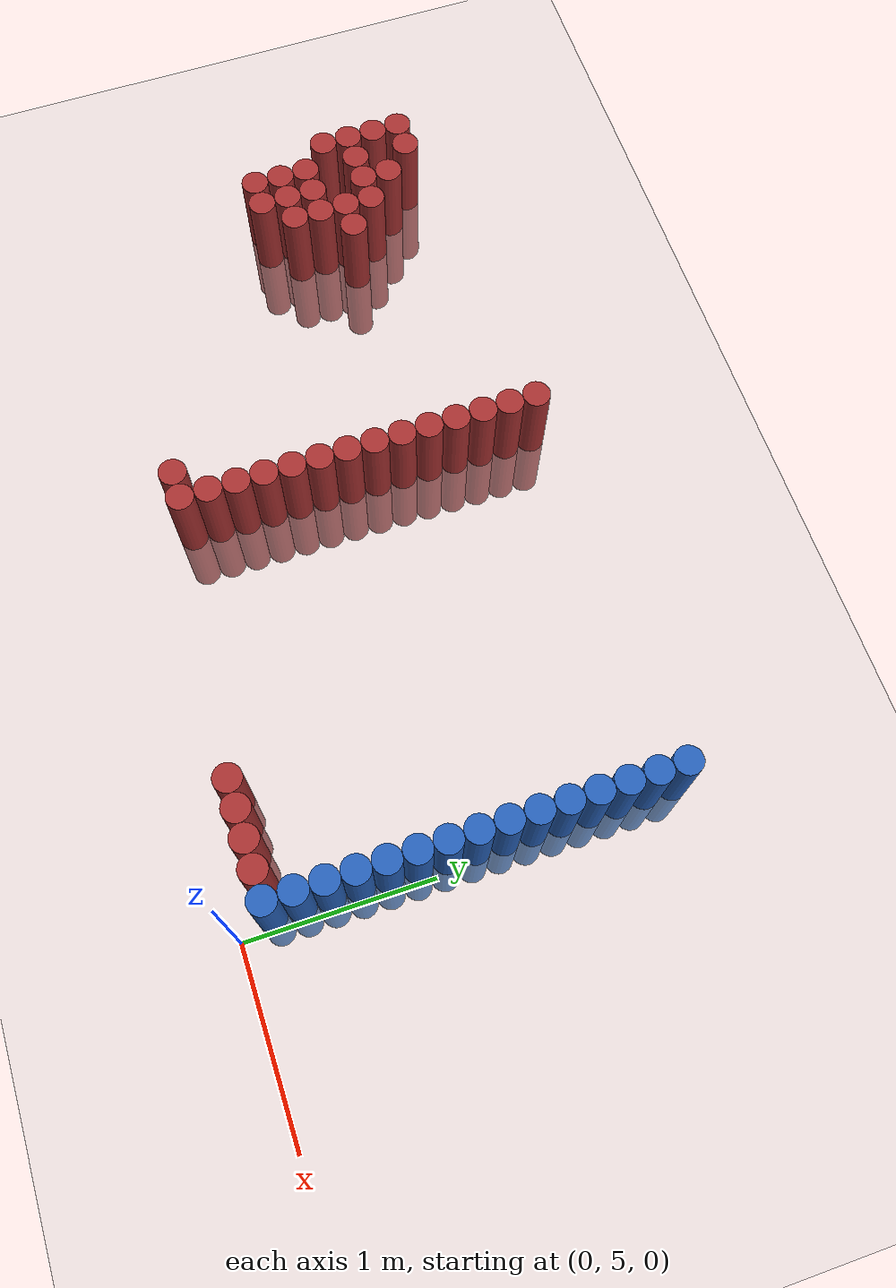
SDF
<sdf version="1.6">
 <world name="default">
  <model name="ground_plane">
   <static>1</static>
   <link name="link">
    <collision name="collision">
     <geometry><plane><normal>0 0 1</normal><size>100 100</size></plane></geometry>
     <surface><friction><ode><mu>100</mu><mu2>50</mu2></ode></friction></surface>
    </collision>
    <visual name="visual">
     <cast_shadows>0</cast_shadows>
     <geometry><plane><normal>0 0 1</normal><size>100 100</size></plane></geometry>
     <material>
      <script><uri>file://media/materials/scripts/gazebo.material</uri><name>Gazebo/Grey</name></script>
     </material>
    </visual>
   </link>
  </model>
  <model name="unit_cylinder_255">
   <static>1</static>
   <pose>-4.125000 6.675000 0.000000 0.000000 0.000000 0.000000</pose>
   <link name="link">
    <inertial>
     <mass>1</mass>
     <inertia><ixx>0.145833</ixx><ixy>0</ixy><ixz>0</ixz><iyy>0.145833</iyy><iyz>0</iyz><izz>0.125</izz></inertia>
    </inertial>
    <collision name="collision">
     <geometry><cylinder><radius>0.075000</radius><length>1</length></cylinder></geometry>
    </collision>
    <visual name="visual">
     <geometry><cylinder><radius>0.075000</radius><length>1</length></cylinder></geometry>
     <material>
      <ambient>0.648000 0.192000 0.192000 1</ambient>
      <diffuse>0.648000 0.192000 0.192000 1</diffuse>
     </material>
     <material>
      <script><name>Gazebo/Grey</name><uri>file://media/materials/scripts/gazebo.material</uri></script>
     </material>
    </visual>
   </link>
  </model>
  <model name="unit_cylinder_256">
   <static>1</static>
   <pose>-4.125000 6.825000 0.000000 0.000000 0.000000 0.000000</pose>
   <link name="link">
    <inertial>
     <mass>1</mass>
     <inertia><ixx>0.145833</ixx><ixy>0</ixy><ixz>0</ixz><iyy>0.145833</iyy><iyz>0</iyz><izz>0.125</izz></inertia>
    </inertial>
    <collision name="collision">
     <geometry><cylinder><radius>0.075000</radius><length>1</length></cylinder></geometry>
    </collision>
    <visual name="visual">
     <geometry><cylinder><radius>0.075000</radius><length>1</length></cylinder></geometry>
     <material>
      <ambient>0.648000 0.192000 0.192000 1</ambient>
      <diffuse>0.648000 0.192000 0.192000 1</diffuse>
     </material>
     <material>
      <script><name>Gazebo/Grey</name><uri>file://media/materials/scripts/gazebo.material</uri></script>
     </material>
    </visual>
   </link>
  </model>
  <model name="unit_cylinder_257">
   <static>1</static>
   <pose>-4.125000 6.975000 0.000000 0.000000 0.000000 0.000000</pose>
   <link name="link">
    <inertial>
     <mass>1</mass>
     <inertia><ixx>0.145833</ixx><ixy>0</ixy><ixz>0</ixz><iyy>0.145833</iyy><iyz>0</iyz><izz>0.125</izz></inertia>
    </inertial>
    <collision name="collision">
     <geometry><cylinder><radius>0.075000</radius><length>1</length></cylinder></geometry>
    </collision>
    <visual name="visual">
     <geometry><cylinder><radius>0.075000</radius><length>1</length></cylinder></geometry>
     <material>
      <ambient>0.648000 0.192000 0.192000 1</ambient>
      <diffuse>0.648000 0.192000 0.192000 1</diffuse>
     </material>
     <material>
      <script><name>Gazebo/Grey</name><uri>file://media/materials/scripts/gazebo.material</uri></script>
     </material>
    </visual>
   </link>
  </model>
  <model name="unit_cylinder_258">
   <static>1</static>
   <pose>-4.125000 7.125000 0.000000 0.000000 0.000000 0.000000</pose>
   <link name="link">
    <inertial>
     <mass>1</mass>
     <inertia><ixx>0.145833</ixx><ixy>0</ixy><ixz>0</ixz><iyy>0.145833</iyy><iyz>0</iyz><izz>0.125</izz></inertia>
    </inertial>
    <collision name="collision">
     <geometry><cylinder><radius>0.075000</radius><length>1</length></cylinder></geometry>
    </collision>
    <visual name="visual">
     <geometry><cylinder><radius>0.075000</radius><length>1</length></cylinder></geometry>
     <material>
      <ambient>0.648000 0.192000 0.192000 1</ambient>
      <diffuse>0.648000 0.192000 0.192000 1</diffuse>
     </material>
     <material>
      <script><name>Gazebo/Grey</name><uri>file://media/materials/scripts/gazebo.material</uri></script>
     </material>
    </visual>
   </link>
  </model>
  <model name="unit_cylinder_262">
   <static>1</static>
   <pose>-3.975000 6.225000 0.000000 0.000000 0.000000 0.000000</pose>
   <link name="link">
    <inertial>
     <mass>1</mass>
     <inertia><ixx>0.145833</ixx><ixy>0</ixy><ixz>0</ixz><iyy>0.145833</iyy><iyz>0</iyz><izz>0.125</izz></inertia>
    </inertial>
    <collision name="collision">
     <geometry><cylinder><radius>0.075000</radius><length>1</length></cylinder></geometry>
    </collision>
    <visual name="visual">
     <geometry><cylinder><radius>0.075000</radius><length>1</length></cylinder></geometry>
     <material>
      <ambient>0.648000 0.192000 0.192000 1</ambient>
      <diffuse>0.648000 0.192000 0.192000 1</diffuse>
     </material>
     <material>
      <script><name>Gazebo/Grey</name><uri>file://media/materials/scripts/gazebo.material</uri></script>
     </material>
    </visual>
   </link>
  </model>
  <model name="unit_cylinder_263">
   <static>1</static>
   <pose>-3.975000 6.375000 0.000000 0.000000 0.000000 0.000000</pose>
   <link name="link">
    <inertial>
     <mass>1</mass>
     <inertia><ixx>0.145833</ixx><ixy>0</ixy><ixz>0</ixz><iyy>0.145833</iyy><iyz>0</iyz><izz>0.125</izz></inertia>
    </inertial>
    <collision name="collision">
     <geometry><cylinder><radius>0.075000</radius><length>1</length></cylinder></geometry>
    </collision>
    <visual name="visual">
     <geometry><cylinder><radius>0.075000</radius><length>1</length></cylinder></geometry>
     <material>
      <ambient>0.648000 0.192000 0.192000 1</ambient>
      <diffuse>0.648000 0.192000 0.192000 1</diffuse>
     </material>
     <material>
      <script><name>Gazebo/Grey</name><uri>file://media/materials/scripts/gazebo.material</uri></script>
     </material>
    </visual>
   </link>
  </model>
  <model name="unit_cylinder_264">
   <static>1</static>
   <pose>-3.975000 6.525000 0.000000 0.000000 0.000000 0.000000</pose>
   <link name="link">
    <inertial>
     <mass>1</mass>
     <inertia><ixx>0.145833</ixx><ixy>0</ixy><ixz>0</ixz><iyy>0.145833</iyy><iyz>0</iyz><izz>0.125</izz></inertia>
    </inertial>
    <collision name="collision">
     <geometry><cylinder><radius>0.075000</radius><length>1</length></cylinder></geometry>
    </collision>
    <visual name="visual">
     <geometry><cylinder><radius>0.075000</radius><length>1</length></cylinder></geometry>
     <material>
      <ambient>0.648000 0.192000 0.192000 1</ambient>
      <diffuse>0.648000 0.192000 0.192000 1</diffuse>
     </material>
     <material>
      <script><name>Gazebo/Grey</name><uri>file://media/materials/scripts/gazebo.material</uri></script>
     </material>
    </visual>
   </link>
  </model>
  <model name="unit_cylinder_265">
   <static>1</static>
   <pose>-3.975000 6.825000 0.000000 0.000000 0.000000 0.000000</pose>
   <link name="link">
    <inertial>
     <mass>1</mass>
     <inertia><ixx>0.145833</ixx><ixy>0</ixy><ixz>0</ixz><iyy>0.145833</iyy><iyz>0</iyz><izz>0.125</izz></inertia>
    </inertial>
    <collision name="collision">
     <geometry><cylinder><radius>0.075000</radius><length>1</length></cylinder></geometry>
    </collision>
    <visual name="visual">
     <geometry><cylinder><radius>0.075000</radius><length>1</length></cylinder></geometry>
     <material>
      <ambient>0.648000 0.192000 0.192000 1</ambient>
      <diffuse>0.648000 0.192000 0.192000 1</diffuse>
     </material>
     <material>
      <script><name>Gazebo/Grey</name><uri>file://media/materials/scripts/gazebo.material</uri></script>
     </material>
    </visual>
   </link>
  </model>
  <model name="unit_cylinder_266">
   <static>1</static>
   <pose>-3.975000 7.125000 0.000000 0.000000 0.000000 0.000000</pose>
   <link name="link">
    <inertial>
     <mass>1</mass>
     <inertia><ixx>0.145833</ixx><ixy>0</ixy><ixz>0</ixz><iyy>0.145833</iyy><iyz>0</iyz><izz>0.125</izz></inertia>
    </inertial>
    <collision name="collision">
     <geometry><cylinder><radius>0.075000</radius><length>1</length></cylinder></geometry>
    </collision>
    <visual name="visual">
     <geometry><cylinder><radius>0.075000</radius><length>1</length></cylinder></geometry>
     <material>
      <ambient>0.648000 0.192000 0.192000 1</ambient>
      <diffuse>0.648000 0.192000 0.192000 1</diffuse>
     </material>
     <material>
      <script><name>Gazebo/Grey</name><uri>file://media/materials/scripts/gazebo.material</uri></script>
     </material>
    </visual>
   </link>
  </model>
  <model name="unit_cylinder_268">
   <static>1</static>
   <pose>-3.825000 6.225000 0.000000 0.000000 0.000000 0.000000</pose>
   <link name="link">
    <inertial>
     <mass>1</mass>
     <inertia><ixx>0.145833</ixx><ixy>0</ixy><ixz>0</ixz><iyy>0.145833</iyy><iyz>0</iyz><izz>0.125</izz></inertia>
    </inertial>
    <collision name="collision">
     <geometry><cylinder><radius>0.075000</radius><length>1</length></cylinder></geometry>
    </collision>
    <visual name="visual">
     <geometry><cylinder><radius>0.075000</radius><length>1</length></cylinder></geometry>
     <material>
      <ambient>0.648000 0.192000 0.192000 1</ambient>
      <diffuse>0.648000 0.192000 0.192000 1</diffuse>
     </material>
     <material>
      <script><name>Gazebo/Grey</name><uri>file://media/materials/scripts/gazebo.material</uri></script>
     </material>
    </visual>
   </link>
  </model>
  <model name="unit_cylinder_269">
   <static>1</static>
   <pose>-3.825000 6.375000 0.000000 0.000000 0.000000 0.000000</pose>
   <link name="link">
    <inertial>
     <mass>1</mass>
     <inertia><ixx>0.145833</ixx><ixy>0</ixy><ixz>0</ixz><iyy>0.145833</iyy><iyz>0</iyz><izz>0.125</izz></inertia>
    </inertial>
    <collision name="collision">
     <geometry><cylinder><radius>0.075000</radius><length>1</length></cylinder></geometry>
    </collision>
    <visual name="visual">
     <geometry><cylinder><radius>0.075000</radius><length>1</length></cylinder></geometry>
     <material>
      <ambient>0.648000 0.192000 0.192000 1</ambient>
      <diffuse>0.648000 0.192000 0.192000 1</diffuse>
     </material>
     <material>
      <script><name>Gazebo/Grey</name><uri>file://media/materials/scripts/gazebo.material</uri></script>
     </material>
    </visual>
   </link>
  </model>
  <model name="unit_cylinder_270">
   <static>1</static>
   <pose>-3.825000 6.525000 0.000000 0.000000 0.000000 0.000000</pose>
   <link name="link">
    <inertial>
     <mass>1</mass>
     <inertia><ixx>0.145833</ixx><ixy>0</ixy><ixz>0</ixz><iyy>0.145833</iyy><iyz>0</iyz><izz>0.125</izz></inertia>
    </inertial>
    <collision name="collision">
     <geometry><cylinder><radius>0.075000</radius><length>1</length></cylinder></geometry>
    </collision>
    <visual name="visual">
     <geometry><cylinder><radius>0.075000</radius><length>1</length></cylinder></geometry>
     <material>
      <ambient>0.648000 0.192000 0.192000 1</ambient>
      <diffuse>0.648000 0.192000 0.192000 1</diffuse>
     </material>
     <material>
      <script><name>Gazebo/Grey</name><uri>file://media/materials/scripts/gazebo.material</uri></script>
     </material>
    </visual>
   </link>
  </model>
  <model name="unit_cylinder_271">
   <static>1</static>
   <pose>-3.825000 6.825000 0.000000 0.000000 0.000000 0.000000</pose>
   <link name="link">
    <inertial>
     <mass>1</mass>
     <inertia><ixx>0.145833</ixx><ixy>0</ixy><ixz>0</ixz><iyy>0.145833</iyy><iyz>0</iyz><izz>0.125</izz></inertia>
    </inertial>
    <collision name="collision">
     <geometry><cylinder><radius>0.075000</radius><length>1</length></cylinder></geometry>
    </collision>
    <visual name="visual">
     <geometry><cylinder><radius>0.075000</radius><length>1</length></cylinder></geometry>
     <material>
      <ambient>0.648000 0.192000 0.192000 1</ambient>
      <diffuse>0.648000 0.192000 0.192000 1</diffuse>
     </material>
     <material>
      <script><name>Gazebo/Grey</name><uri>file://media/materials/scripts/gazebo.material</uri></script>
     </material>
    </visual>
   </link>
  </model>
  <model name="unit_cylinder_272">
   <static>1</static>
   <pose>-3.825000 6.975000 0.000000 0.000000 0.000000 0.000000</pose>
   <link name="link">
    <inertial>
     <mass>1</mass>
     <inertia><ixx>0.145833</ixx><ixy>0</ixy><ixz>0</ixz><iyy>0.145833</iyy><iyz>0</iyz><izz>0.125</izz></inertia>
    </inertial>
    <collision name="collision">
     <geometry><cylinder><radius>0.075000</radius><length>1</length></cylinder></geometry>
    </collision>
    <visual name="visual">
     <geometry><cylinder><radius>0.075000</radius><length>1</length></cylinder></geometry>
     <material>
      <ambient>0.648000 0.192000 0.192000 1</ambient>
      <diffuse>0.648000 0.192000 0.192000 1</diffuse>
     </material>
     <material>
      <script><name>Gazebo/Grey</name><uri>file://media/materials/scripts/gazebo.material</uri></script>
     </material>
    </visual>
   </link>
  </model>
  <model name="unit_cylinder_273">
   <static>1</static>
   <pose>-3.675000 6.375000 0.000000 0.000000 0.000000 0.000000</pose>
   <link name="link">
    <inertial>
     <mass>1</mass>
     <inertia><ixx>0.145833</ixx><ixy>0</ixy><ixz>0</ixz><iyy>0.145833</iyy><iyz>0</iyz><izz>0.125</izz></inertia>
    </inertial>
    <collision name="collision">
     <geometry><cylinder><radius>0.075000</radius><length>1</length></cylinder></geometry>
    </collision>
    <visual name="visual">
     <geometry><cylinder><radius>0.075000</radius><length>1</length></cylinder></geometry>
     <material>
      <ambient>0.648000 0.192000 0.192000 1</ambient>
      <diffuse>0.648000 0.192000 0.192000 1</diffuse>
     </material>
     <material>
      <script><name>Gazebo/Grey</name><uri>file://media/materials/scripts/gazebo.material</uri></script>
     </material>
    </visual>
   </link>
  </model>
  <model name="unit_cylinder_274">
   <static>1</static>
   <pose>-3.675000 6.525000 0.000000 0.000000 0.000000 0.000000</pose>
   <link name="link">
    <inertial>
     <mass>1</mass>
     <inertia><ixx>0.145833</ixx><ixy>0</ixy><ixz>0</ixz><iyy>0.145833</iyy><iyz>0</iyz><izz>0.125</izz></inertia>
    </inertial>
    <collision name="collision">
     <geometry><cylinder><radius>0.075000</radius><length>1</length></cylinder></geometry>
    </collision>
    <visual name="visual">
     <geometry><cylinder><radius>0.075000</radius><length>1</length></cylinder></geometry>
     <material>
      <ambient>0.648000 0.192000 0.192000 1</ambient>
      <diffuse>0.648000 0.192000 0.192000 1</diffuse>
     </material>
     <material>
      <script><name>Gazebo/Grey</name><uri>file://media/materials/scripts/gazebo.material</uri></script>
     </material>
    </visual>
   </link>
  </model>
  <model name="unit_cylinder_275">
   <static>1</static>
   <pose>-3.675000 6.675000 0.000000 0.000000 0.000000 0.000000</pose>
   <link name="link">
    <inertial>
     <mass>1</mass>
     <inertia><ixx>0.145833</ixx><ixy>0</ixy><ixz>0</ixz><iyy>0.145833</iyy><iyz>0</iyz><izz>0.125</izz></inertia>
    </inertial>
    <collision name="collision">
     <geometry><cylinder><radius>0.075000</radius><length>1</length></cylinder></geometry>
    </collision>
    <visual name="visual">
     <geometry><cylinder><radius>0.075000</radius><length>1</length></cylinder></geometry>
     <material>
      <ambient>0.648000 0.192000 0.192000 1</ambient>
      <diffuse>0.648000 0.192000 0.192000 1</diffuse>
     </material>
     <material>
      <script><name>Gazebo/Grey</name><uri>file://media/materials/scripts/gazebo.material</uri></script>
     </material>
    </visual>
   </link>
  </model>
  <model name="unit_cylinder_276">
   <static>1</static>
   <pose>-3.675000 6.825000 0.000000 0.000000 0.000000 0.000000</pose>
   <link name="link">
    <inertial>
     <mass>1</mass>
     <inertia><ixx>0.145833</ixx><ixy>0</ixy><ixz>0</ixz><iyy>0.145833</iyy><iyz>0</iyz><izz>0.125</izz></inertia>
    </inertial>
    <collision name="collision">
     <geometry><cylinder><radius>0.075000</radius><length>1</length></cylinder></geometry>
    </collision>
    <visual name="visual">
     <geometry><cylinder><radius>0.075000</radius><length>1</length></cylinder></geometry>
     <material>
      <ambient>0.648000 0.192000 0.192000 1</ambient>
      <diffuse>0.648000 0.192000 0.192000 1</diffuse>
     </material>
     <material>
      <script><name>Gazebo/Grey</name><uri>file://media/materials/scripts/gazebo.material</uri></script>
     </material>
    </visual>
   </link>
  </model>
  <model name="unit_cylinder_277">
   <static>1</static>
   <pose>-3.525000 6.675000 0.000000 0.000000 0.000000 0.000000</pose>
   <link name="link">
    <inertial>
     <mass>1</mass>
     <inertia><ixx>0.145833</ixx><ixy>0</ixy><ixz>0</ixz><iyy>0.145833</iyy><iyz>0</iyz><izz>0.125</izz></inertia>
    </inertial>
    <collision name="collision">
     <geometry><cylinder><radius>0.075000</radius><length>1</length></cylinder></geometry>
    </collision>
    <visual name="visual">
     <geometry><cylinder><radius>0.075000</radius><length>1</length></cylinder></geometry>
     <material>
      <ambient>0.648000 0.192000 0.192000 1</ambient>
      <diffuse>0.648000 0.192000 0.192000 1</diffuse>
     </material>
     <material>
      <script><name>Gazebo/Grey</name><uri>file://media/materials/scripts/gazebo.material</uri></script>
     </material>
    </visual>
   </link>
  </model>
  <model name="unit_cylinder_292">
   <static>1</static>
   <pose>-2.325000 5.325000 0.000000 0.000000 0.000000 0.000000</pose>
   <link name="link">
    <inertial>
     <mass>1</mass>
     <inertia><ixx>0.145833</ixx><ixy>0</ixy><ixz>0</ixz><iyy>0.145833</iyy><iyz>0</iyz><izz>0.125</izz></inertia>
    </inertial>
    <collision name="collision">
     <geometry><cylinder><radius>0.075000</radius><length>1</length></cylinder></geometry>
    </collision>
    <visual name="visual">
     <geometry><cylinder><radius>0.075000</radius><length>1</length></cylinder></geometry>
     <material>
      <ambient>0.648000 0.192000 0.192000 1</ambient>
      <diffuse>0.648000 0.192000 0.192000 1</diffuse>
     </material>
     <material>
      <script><name>Gazebo/Grey</name><uri>file://media/materials/scripts/gazebo.material</uri></script>
     </material>
    </visual>
   </link>
  </model>
  <model name="unit_cylinder_297">
   <static>1</static>
   <pose>-2.175000 5.325000 0.000000 0.000000 0.000000 0.000000</pose>
   <link name="link">
    <inertial>
     <mass>1</mass>
     <inertia><ixx>0.145833</ixx><ixy>0</ixy><ixz>0</ixz><iyy>0.145833</iyy><iyz>0</iyz><izz>0.125</izz></inertia>
    </inertial>
    <collision name="collision">
     <geometry><cylinder><radius>0.075000</radius><length>1</length></cylinder></geometry>
    </collision>
    <visual name="visual">
     <geometry><cylinder><radius>0.075000</radius><length>1</length></cylinder></geometry>
     <material>
      <ambient>0.648000 0.192000 0.192000 1</ambient>
      <diffuse>0.648000 0.192000 0.192000 1</diffuse>
     </material>
     <material>
      <script><name>Gazebo/Grey</name><uri>file://media/materials/scripts/gazebo.material</uri></script>
     </material>
    </visual>
   </link>
  </model>
  <model name="unit_cylinder_298">
   <static>1</static>
   <pose>-2.175000 5.475000 0.000000 0.000000 0.000000 0.000000</pose>
   <link name="link">
    <inertial>
     <mass>1</mass>
     <inertia><ixx>0.145833</ixx><ixy>0</ixy><ixz>0</ixz><iyy>0.145833</iyy><iyz>0</iyz><izz>0.125</izz></inertia>
    </inertial>
    <collision name="collision">
     <geometry><cylinder><radius>0.075000</radius><length>1</length></cylinder></geometry>
    </collision>
    <visual name="visual">
     <geometry><cylinder><radius>0.075000</radius><length>1</length></cylinder></geometry>
     <material>
      <ambient>0.648000 0.192000 0.192000 1</ambient>
      <diffuse>0.648000 0.192000 0.192000 1</diffuse>
     </material>
     <material>
      <script><name>Gazebo/Grey</name><uri>file://media/materials/scripts/gazebo.material</uri></script>
     </material>
    </visual>
   </link>
  </model>
  <model name="unit_cylinder_299">
   <static>1</static>
   <pose>-2.175000 5.625000 0.000000 0.000000 0.000000 0.000000</pose>
   <link name="link">
    <inertial>
     <mass>1</mass>
     <inertia><ixx>0.145833</ixx><ixy>0</ixy><ixz>0</ixz><iyy>0.145833</iyy><iyz>0</iyz><izz>0.125</izz></inertia>
    </inertial>
    <collision name="collision">
     <geometry><cylinder><radius>0.075000</radius><length>1</length></cylinder></geometry>
    </collision>
    <visual name="visual">
     <geometry><cylinder><radius>0.075000</radius><length>1</length></cylinder></geometry>
     <material>
      <ambient>0.648000 0.192000 0.192000 1</ambient>
      <diffuse>0.648000 0.192000 0.192000 1</diffuse>
     </material>
     <material>
      <script><name>Gazebo/Grey</name><uri>file://media/materials/scripts/gazebo.material</uri></script>
     </material>
    </visual>
   </link>
  </model>
  <model name="unit_cylinder_300">
   <static>1</static>
   <pose>-2.175000 5.775000 0.000000 0.000000 0.000000 0.000000</pose>
   <link name="link">
    <inertial>
     <mass>1</mass>
     <inertia><ixx>0.145833</ixx><ixy>0</ixy><ixz>0</ixz><iyy>0.145833</iyy><iyz>0</iyz><izz>0.125</izz></inertia>
    </inertial>
    <collision name="collision">
     <geometry><cylinder><radius>0.075000</radius><length>1</length></cylinder></geometry>
    </collision>
    <visual name="visual">
     <geometry><cylinder><radius>0.075000</radius><length>1</length></cylinder></geometry>
     <material>
      <ambient>0.648000 0.192000 0.192000 1</ambient>
      <diffuse>0.648000 0.192000 0.192000 1</diffuse>
     </material>
     <material>
      <script><name>Gazebo/Grey</name><uri>file://media/materials/scripts/gazebo.material</uri></script>
     </material>
    </visual>
   </link>
  </model>
  <model name="unit_cylinder_301">
   <static>1</static>
   <pose>-2.175000 5.925000 0.000000 0.000000 0.000000 0.000000</pose>
   <link name="link">
    <inertial>
     <mass>1</mass>
     <inertia><ixx>0.145833</ixx><ixy>0</ixy><ixz>0</ixz><iyy>0.145833</iyy><iyz>0</iyz><izz>0.125</izz></inertia>
    </inertial>
    <collision name="collision">
     <geometry><cylinder><radius>0.075000</radius><length>1</length></cylinder></geometry>
    </collision>
    <visual name="visual">
     <geometry><cylinder><radius>0.075000</radius><length>1</length></cylinder></geometry>
     <material>
      <ambient>0.648000 0.192000 0.192000 1</ambient>
      <diffuse>0.648000 0.192000 0.192000 1</diffuse>
     </material>
     <material>
      <script><name>Gazebo/Grey</name><uri>file://media/materials/scripts/gazebo.material</uri></script>
     </material>
    </visual>
   </link>
  </model>
  <model name="unit_cylinder_302">
   <static>1</static>
   <pose>-2.175000 6.075000 0.000000 0.000000 0.000000 0.000000</pose>
   <link name="link">
    <inertial>
     <mass>1</mass>
     <inertia><ixx>0.145833</ixx><ixy>0</ixy><ixz>0</ixz><iyy>0.145833</iyy><iyz>0</iyz><izz>0.125</izz></inertia>
    </inertial>
    <collision name="collision">
     <geometry><cylinder><radius>0.075000</radius><length>1</length></cylinder></geometry>
    </collision>
    <visual name="visual">
     <geometry><cylinder><radius>0.075000</radius><length>1</length></cylinder></geometry>
     <material>
      <ambient>0.648000 0.192000 0.192000 1</ambient>
      <diffuse>0.648000 0.192000 0.192000 1</diffuse>
     </material>
     <material>
      <script><name>Gazebo/Grey</name><uri>file://media/materials/scripts/gazebo.material</uri></script>
     </material>
    </visual>
   </link>
  </model>
  <model name="unit_cylinder_303">
   <static>1</static>
   <pose>-2.175000 6.225000 0.000000 0.000000 0.000000 0.000000</pose>
   <link name="link">
    <inertial>
     <mass>1</mass>
     <inertia><ixx>0.145833</ixx><ixy>0</ixy><ixz>0</ixz><iyy>0.145833</iyy><iyz>0</iyz><izz>0.125</izz></inertia>
    </inertial>
    <collision name="collision">
     <geometry><cylinder><radius>0.075000</radius><length>1</length></cylinder></geometry>
    </collision>
    <visual name="visual">
     <geometry><cylinder><radius>0.075000</radius><length>1</length></cylinder></geometry>
     <material>
      <ambient>0.648000 0.192000 0.192000 1</ambient>
      <diffuse>0.648000 0.192000 0.192000 1</diffuse>
     </material>
     <material>
      <script><name>Gazebo/Grey</name><uri>file://media/materials/scripts/gazebo.material</uri></script>
     </material>
    </visual>
   </link>
  </model>
  <model name="unit_cylinder_304">
   <static>1</static>
   <pose>-2.175000 6.375000 0.000000 0.000000 0.000000 0.000000</pose>
   <link name="link">
    <inertial>
     <mass>1</mass>
     <inertia><ixx>0.145833</ixx><ixy>0</ixy><ixz>0</ixz><iyy>0.145833</iyy><iyz>0</iyz><izz>0.125</izz></inertia>
    </inertial>
    <collision name="collision">
     <geometry><cylinder><radius>0.075000</radius><length>1</length></cylinder></geometry>
    </collision>
    <visual name="visual">
     <geometry><cylinder><radius>0.075000</radius><length>1</length></cylinder></geometry>
     <material>
      <ambient>0.648000 0.192000 0.192000 1</ambient>
      <diffuse>0.648000 0.192000 0.192000 1</diffuse>
     </material>
     <material>
      <script><name>Gazebo/Grey</name><uri>file://media/materials/scripts/gazebo.material</uri></script>
     </material>
    </visual>
   </link>
  </model>
  <model name="unit_cylinder_305">
   <static>1</static>
   <pose>-2.175000 6.525000 0.000000 0.000000 0.000000 0.000000</pose>
   <link name="link">
    <inertial>
     <mass>1</mass>
     <inertia><ixx>0.145833</ixx><ixy>0</ixy><ixz>0</ixz><iyy>0.145833</iyy><iyz>0</iyz><izz>0.125</izz></inertia>
    </inertial>
    <collision name="collision">
     <geometry><cylinder><radius>0.075000</radius><length>1</length></cylinder></geometry>
    </collision>
    <visual name="visual">
     <geometry><cylinder><radius>0.075000</radius><length>1</length></cylinder></geometry>
     <material>
      <ambient>0.648000 0.192000 0.192000 1</ambient>
      <diffuse>0.648000 0.192000 0.192000 1</diffuse>
     </material>
     <material>
      <script><name>Gazebo/Grey</name><uri>file://media/materials/scripts/gazebo.material</uri></script>
     </material>
    </visual>
   </link>
  </model>
  <model name="unit_cylinder_306">
   <static>1</static>
   <pose>-2.175000 6.675000 0.000000 0.000000 0.000000 0.000000</pose>
   <link name="link">
    <inertial>
     <mass>1</mass>
     <inertia><ixx>0.145833</ixx><ixy>0</ixy><ixz>0</ixz><iyy>0.145833</iyy><iyz>0</iyz><izz>0.125</izz></inertia>
    </inertial>
    <collision name="collision">
     <geometry><cylinder><radius>0.075000</radius><length>1</length></cylinder></geometry>
    </collision>
    <visual name="visual">
     <geometry><cylinder><radius>0.075000</radius><length>1</length></cylinder></geometry>
     <material>
      <ambient>0.648000 0.192000 0.192000 1</ambient>
      <diffuse>0.648000 0.192000 0.192000 1</diffuse>
     </material>
     <material>
      <script><name>Gazebo/Grey</name><uri>file://media/materials/scripts/gazebo.material</uri></script>
     </material>
    </visual>
   </link>
  </model>
  <model name="unit_cylinder_307">
   <static>1</static>
   <pose>-2.175000 6.825000 0.000000 0.000000 0.000000 0.000000</pose>
   <link name="link">
    <inertial>
     <mass>1</mass>
     <inertia><ixx>0.145833</ixx><ixy>0</ixy><ixz>0</ixz><iyy>0.145833</iyy><iyz>0</iyz><izz>0.125</izz></inertia>
    </inertial>
    <collision name="collision">
     <geometry><cylinder><radius>0.075000</radius><length>1</length></cylinder></geometry>
    </collision>
    <visual name="visual">
     <geometry><cylinder><radius>0.075000</radius><length>1</length></cylinder></geometry>
     <material>
      <ambient>0.648000 0.192000 0.192000 1</ambient>
      <diffuse>0.648000 0.192000 0.192000 1</diffuse>
     </material>
     <material>
      <script><name>Gazebo/Grey</name><uri>file://media/materials/scripts/gazebo.material</uri></script>
     </material>
    </visual>
   </link>
  </model>
  <model name="unit_cylinder_308">
   <static>1</static>
   <pose>-2.175000 6.975000 0.000000 0.000000 0.000000 0.000000</pose>
   <link name="link">
    <inertial>
     <mass>1</mass>
     <inertia><ixx>0.145833</ixx><ixy>0</ixy><ixz>0</ixz><iyy>0.145833</iyy><iyz>0</iyz><izz>0.125</izz></inertia>
    </inertial>
    <collision name="collision">
     <geometry><cylinder><radius>0.075000</radius><length>1</length></cylinder></geometry>
    </collision>
    <visual name="visual">
     <geometry><cylinder><radius>0.075000</radius><length>1</length></cylinder></geometry>
     <material>
      <ambient>0.648000 0.192000 0.192000 1</ambient>
      <diffuse>0.648000 0.192000 0.192000 1</diffuse>
     </material>
     <material>
      <script><name>Gazebo/Grey</name><uri>file://media/materials/scripts/gazebo.material</uri></script>
     </material>
    </visual>
   </link>
  </model>
  <model name="unit_cylinder_309">
   <static>1</static>
   <pose>-2.175000 7.125000 0.000000 0.000000 0.000000 0.000000</pose>
   <link name="link">
    <inertial>
     <mass>1</mass>
     <inertia><ixx>0.145833</ixx><ixy>0</ixy><ixz>0</ixz><iyy>0.145833</iyy><iyz>0</iyz><izz>0.125</izz></inertia>
    </inertial>
    <collision name="collision">
     <geometry><cylinder><radius>0.075000</radius><length>1</length></cylinder></geometry>
    </collision>
    <visual name="visual">
     <geometry><cylinder><radius>0.075000</radius><length>1</length></cylinder></geometry>
     <material>
      <ambient>0.648000 0.192000 0.192000 1</ambient>
      <diffuse>0.648000 0.192000 0.192000 1</diffuse>
     </material>
     <material>
      <script><name>Gazebo/Grey</name><uri>file://media/materials/scripts/gazebo.material</uri></script>
     </material>
    </visual>
   </link>
  </model>
  <model name="unit_cylinder_310">
   <static>1</static>
   <pose>-2.175000 7.275000 0.000000 0.000000 0.000000 0.000000</pose>
   <link name="link">
    <inertial>
     <mass>1</mass>
     <inertia><ixx>0.145833</ixx><ixy>0</ixy><ixz>0</ixz><iyy>0.145833</iyy><iyz>0</iyz><izz>0.125</izz></inertia>
    </inertial>
    <collision name="collision">
     <geometry><cylinder><radius>0.075000</radius><length>1</length></cylinder></geometry>
    </collision>
    <visual name="visual">
     <geometry><cylinder><radius>0.075000</radius><length>1</length></cylinder></geometry>
     <material>
      <ambient>0.648000 0.192000 0.192000 1</ambient>
      <diffuse>0.648000 0.192000 0.192000 1</diffuse>
     </material>
     <material>
      <script><name>Gazebo/Grey</name><uri>file://media/materials/scripts/gazebo.material</uri></script>
     </material>
    </visual>
   </link>
  </model>
  <model name="unit_cylinder_335">
   <static>1</static>
   <pose>-0.675000 5.175000 0.000000 0.000000 0.000000 0.000000</pose>
   <link name="link">
    <inertial>
     <mass>1</mass>
     <inertia><ixx>0.145833</ixx><ixy>0</ixy><ixz>0</ixz><iyy>0.145833</iyy><iyz>0</iyz><izz>0.125</izz></inertia>
    </inertial>
    <collision name="collision">
     <geometry><cylinder><radius>0.075000</radius><length>1</length></cylinder></geometry>
    </collision>
    <visual name="visual">
     <geometry><cylinder><radius>0.075000</radius><length>1</length></cylinder></geometry>
     <material>
      <ambient>0.648000 0.192000 0.192000 1</ambient>
      <diffuse>0.648000 0.192000 0.192000 1</diffuse>
     </material>
     <material>
      <script><name>Gazebo/Grey</name><uri>file://media/materials/scripts/gazebo.material</uri></script>
     </material>
    </visual>
   </link>
  </model>
  <model name="unit_cylinder_337">
   <static>1</static>
   <pose>-0.525000 5.175000 0.000000 0.000000 0.000000 0.000000</pose>
   <link name="link">
    <inertial>
     <mass>1</mass>
     <inertia><ixx>0.145833</ixx><ixy>0</ixy><ixz>0</ixz><iyy>0.145833</iyy><iyz>0</iyz><izz>0.125</izz></inertia>
    </inertial>
    <collision name="collision">
     <geometry><cylinder><radius>0.075000</radius><length>1</length></cylinder></geometry>
    </collision>
    <visual name="visual">
     <geometry><cylinder><radius>0.075000</radius><length>1</length></cylinder></geometry>
     <material>
      <ambient>0.648000 0.192000 0.192000 1</ambient>
      <diffuse>0.648000 0.192000 0.192000 1</diffuse>
     </material>
     <material>
      <script><name>Gazebo/Grey</name><uri>file://media/materials/scripts/gazebo.material</uri></script>
     </material>
    </visual>
   </link>
  </model>
  <model name="unit_cylinder_339">
   <static>1</static>
   <pose>-0.375000 5.175000 0.000000 0.000000 0.000000 0.000000</pose>
   <link name="link">
    <inertial>
     <mass>1</mass>
     <inertia><ixx>0.145833</ixx><ixy>0</ixy><ixz>0</ixz><iyy>0.145833</iyy><iyz>0</iyz><izz>0.125</izz></inertia>
    </inertial>
    <collision name="collision">
     <geometry><cylinder><radius>0.075000</radius><length>1</length></cylinder></geometry>
    </collision>
    <visual name="visual">
     <geometry><cylinder><radius>0.075000</radius><length>1</length></cylinder></geometry>
     <material>
      <ambient>0.648000 0.192000 0.192000 1</ambient>
      <diffuse>0.648000 0.192000 0.192000 1</diffuse>
     </material>
     <material>
      <script><name>Gazebo/Grey</name><uri>file://media/materials/scripts/gazebo.material</uri></script>
     </material>
    </visual>
   </link>
  </model>
  <model name="unit_cylinder_341">
   <static>1</static>
   <pose>-0.225000 5.175000 0.000000 0.000000 0.000000 0.000000</pose>
   <link name="link">
    <inertial>
     <mass>1</mass>
     <inertia><ixx>0.145833</ixx><ixy>0</ixy><ixz>0</ixz><iyy>0.145833</iyy><iyz>0</iyz><izz>0.125</izz></inertia>
    </inertial>
    <collision name="collision">
     <geometry><cylinder><radius>0.075000</radius><length>1</length></cylinder></geometry>
    </collision>
    <visual name="visual">
     <geometry><cylinder><radius>0.075000</radius><length>1</length></cylinder></geometry>
     <material>
      <ambient>0.648000 0.192000 0.192000 1</ambient>
      <diffuse>0.648000 0.192000 0.192000 1</diffuse>
     </material>
     <material>
      <script><name>Gazebo/Grey</name><uri>file://media/materials/scripts/gazebo.material</uri></script>
     </material>
    </visual>
   </link>
  </model>
  <model name="unit_cylinder_343">
   <static>1</static>
   <pose>-0.075000 5.175000 0.000000 0.000000 0.000000 0.000000</pose>
   <link name="link">
    <inertial>
     <mass>1</mass>
     <inertia><ixx>0.145833</ixx><ixy>0</ixy><ixz>0</ixz><iyy>0.145833</iyy><iyz>0</iyz><izz>0.125</izz></inertia>
    </inertial>
    <collision name="collision">
     <geometry><cylinder><radius>0.075000</radius><length>1</length></cylinder></geometry>
    </collision>
    <visual name="visual">
     <geometry><cylinder><radius>0.075000</radius><length>1</length></cylinder></geometry>
     <material>
      <ambient>0.152000 0.379000 0.720000 1</ambient>
      <diffuse>0.152000 0.379000 0.720000 1</diffuse>
     </material>
     <material>
      <script><name>Gazebo/Grey</name><uri>file://media/materials/scripts/gazebo.material</uri></script>
     </material>
    </visual>
   </link>
  </model>
  <model name="unit_cylinder_344">
   <static>1</static>
   <pose>-0.075000 5.325000 0.000000 0.000000 0.000000 0.000000</pose>
   <link name="link">
    <inertial>
     <mass>1</mass>
     <inertia><ixx>0.145833</ixx><ixy>0</ixy><ixz>0</ixz><iyy>0.145833</iyy><iyz>0</iyz><izz>0.125</izz></inertia>
    </inertial>
    <collision name="collision">
     <geometry><cylinder><radius>0.075000</radius><length>1</length></cylinder></geometry>
    </collision>
    <visual name="visual">
     <geometry><cylinder><radius>0.075000</radius><length>1</length></cylinder></geometry>
     <material>
      <ambient>0.152000 0.379000 0.720000 1</ambient>
      <diffuse>0.152000 0.379000 0.720000 1</diffuse>
     </material>
     <material>
      <script><name>Gazebo/Grey</name><uri>file://media/materials/scripts/gazebo.material</uri></script>
     </material>
    </visual>
   </link>
  </model>
  <model name="unit_cylinder_345">
   <static>1</static>
   <pose>-0.075000 5.475000 0.000000 0.000000 0.000000 0.000000</pose>
   <link name="link">
    <inertial>
     <mass>1</mass>
     <inertia><ixx>0.145833</ixx><ixy>0</ixy><ixz>0</ixz><iyy>0.145833</iyy><iyz>0</iyz><izz>0.125</izz></inertia>
    </inertial>
    <collision name="collision">
     <geometry><cylinder><radius>0.075000</radius><length>1</length></cylinder></geometry>
    </collision>
    <visual name="visual">
     <geometry><cylinder><radius>0.075000</radius><length>1</length></cylinder></geometry>
     <material>
      <ambient>0.152000 0.379000 0.720000 1</ambient>
      <diffuse>0.152000 0.379000 0.720000 1</diffuse>
     </material>
     <material>
      <script><name>Gazebo/Grey</name><uri>file://media/materials/scripts/gazebo.material</uri></script>
     </material>
    </visual>
   </link>
  </model>
  <model name="unit_cylinder_346">
   <static>1</static>
   <pose>-0.075000 5.625000 0.000000 0.000000 0.000000 0.000000</pose>
   <link name="link">
    <inertial>
     <mass>1</mass>
     <inertia><ixx>0.145833</ixx><ixy>0</ixy><ixz>0</ixz><iyy>0.145833</iyy><iyz>0</iyz><izz>0.125</izz></inertia>
    </inertial>
    <collision name="collision">
     <geometry><cylinder><radius>0.075000</radius><length>1</length></cylinder></geometry>
    </collision>
    <visual name="visual">
     <geometry><cylinder><radius>0.075000</radius><length>1</length></cylinder></geometry>
     <material>
      <ambient>0.152000 0.379000 0.720000 1</ambient>
      <diffuse>0.152000 0.379000 0.720000 1</diffuse>
     </material>
     <material>
      <script><name>Gazebo/Grey</name><uri>file://media/materials/scripts/gazebo.material</uri></script>
     </material>
    </visual>
   </link>
  </model>
  <model name="unit_cylinder_347">
   <static>1</static>
   <pose>-0.075000 5.775000 0.000000 0.000000 0.000000 0.000000</pose>
   <link name="link">
    <inertial>
     <mass>1</mass>
     <inertia><ixx>0.145833</ixx><ixy>0</ixy><ixz>0</ixz><iyy>0.145833</iyy><iyz>0</iyz><izz>0.125</izz></inertia>
    </inertial>
    <collision name="collision">
     <geometry><cylinder><radius>0.075000</radius><length>1</length></cylinder></geometry>
    </collision>
    <visual name="visual">
     <geometry><cylinder><radius>0.075000</radius><length>1</length></cylinder></geometry>
     <material>
      <ambient>0.152000 0.379000 0.720000 1</ambient>
      <diffuse>0.152000 0.379000 0.720000 1</diffuse>
     </material>
     <material>
      <script><name>Gazebo/Grey</name><uri>file://media/materials/scripts/gazebo.material</uri></script>
     </material>
    </visual>
   </link>
  </model>
  <model name="unit_cylinder_348">
   <static>1</static>
   <pose>-0.075000 5.925000 0.000000 0.000000 0.000000 0.000000</pose>
   <link name="link">
    <inertial>
     <mass>1</mass>
     <inertia><ixx>0.145833</ixx><ixy>0</ixy><ixz>0</ixz><iyy>0.145833</iyy><iyz>0</iyz><izz>0.125</izz></inertia>
    </inertial>
    <collision name="collision">
     <geometry><cylinder><radius>0.075000</radius><length>1</length></cylinder></geometry>
    </collision>
    <visual name="visual">
     <geometry><cylinder><radius>0.075000</radius><length>1</length></cylinder></geometry>
     <material>
      <ambient>0.152000 0.379000 0.720000 1</ambient>
      <diffuse>0.152000 0.379000 0.720000 1</diffuse>
     </material>
     <material>
      <script><name>Gazebo/Grey</name><uri>file://media/materials/scripts/gazebo.material</uri></script>
     </material>
    </visual>
   </link>
  </model>
  <model name="unit_cylinder_349">
   <static>1</static>
   <pose>-0.075000 6.075000 0.000000 0.000000 0.000000 0.000000</pose>
   <link name="link">
    <inertial>
     <mass>1</mass>
     <inertia><ixx>0.145833</ixx><ixy>0</ixy><ixz>0</ixz><iyy>0.145833</iyy><iyz>0</iyz><izz>0.125</izz></inertia>
    </inertial>
    <collision name="collision">
     <geometry><cylinder><radius>0.075000</radius><length>1</length></cylinder></geometry>
    </collision>
    <visual name="visual">
     <geometry><cylinder><radius>0.075000</radius><length>1</length></cylinder></geometry>
     <material>
      <ambient>0.152000 0.379000 0.720000 1</ambient>
      <diffuse>0.152000 0.379000 0.720000 1</diffuse>
     </material>
     <material>
      <script><name>Gazebo/Grey</name><uri>file://media/materials/scripts/gazebo.material</uri></script>
     </material>
    </visual>
   </link>
  </model>
  <model name="unit_cylinder_350">
   <static>1</static>
   <pose>-0.075000 6.225000 0.000000 0.000000 0.000000 0.000000</pose>
   <link name="link">
    <inertial>
     <mass>1</mass>
     <inertia><ixx>0.145833</ixx><ixy>0</ixy><ixz>0</ixz><iyy>0.145833</iyy><iyz>0</iyz><izz>0.125</izz></inertia>
    </inertial>
    <collision name="collision">
     <geometry><cylinder><radius>0.075000</radius><length>1</length></cylinder></geometry>
    </collision>
    <visual name="visual">
     <geometry><cylinder><radius>0.075000</radius><length>1</length></cylinder></geometry>
     <material>
      <ambient>0.152000 0.379000 0.720000 1</ambient>
      <diffuse>0.152000 0.379000 0.720000 1</diffuse>
     </material>
     <material>
      <script><name>Gazebo/Grey</name><uri>file://media/materials/scripts/gazebo.material</uri></script>
     </material>
    </visual>
   </link>
  </model>
  <model name="unit_cylinder_351">
   <static>1</static>
   <pose>-0.075000 6.375000 0.000000 0.000000 0.000000 0.000000</pose>
   <link name="link">
    <inertial>
     <mass>1</mass>
     <inertia><ixx>0.145833</ixx><ixy>0</ixy><ixz>0</ixz><iyy>0.145833</iyy><iyz>0</iyz><izz>0.125</izz></inertia>
    </inertial>
    <collision name="collision">
     <geometry><cylinder><radius>0.075000</radius><length>1</length></cylinder></geometry>
    </collision>
    <visual name="visual">
     <geometry><cylinder><radius>0.075000</radius><length>1</length></cylinder></geometry>
     <material>
      <ambient>0.152000 0.379000 0.720000 1</ambient>
      <diffuse>0.152000 0.379000 0.720000 1</diffuse>
     </material>
     <material>
      <script><name>Gazebo/Grey</name><uri>file://media/materials/scripts/gazebo.material</uri></script>
     </material>
    </visual>
   </link>
  </model>
  <model name="unit_cylinder_352">
   <static>1</static>
   <pose>-0.075000 6.525000 0.000000 0.000000 0.000000 0.000000</pose>
   <link name="link">
    <inertial>
     <mass>1</mass>
     <inertia><ixx>0.145833</ixx><ixy>0</ixy><ixz>0</ixz><iyy>0.145833</iyy><iyz>0</iyz><izz>0.125</izz></inertia>
    </inertial>
    <collision name="collision">
     <geometry><cylinder><radius>0.075000</radius><length>1</length></cylinder></geometry>
    </collision>
    <visual name="visual">
     <geometry><cylinder><radius>0.075000</radius><length>1</length></cylinder></geometry>
     <material>
      <ambient>0.152000 0.379000 0.720000 1</ambient>
      <diffuse>0.152000 0.379000 0.720000 1</diffuse>
     </material>
     <material>
      <script><name>Gazebo/Grey</name><uri>file://media/materials/scripts/gazebo.material</uri></script>
     </material>
    </visual>
   </link>
  </model>
  <model name="unit_cylinder_353">
   <static>1</static>
   <pose>-0.075000 6.675000 0.000000 0.000000 0.000000 0.000000</pose>
   <link name="link">
    <inertial>
     <mass>1</mass>
     <inertia><ixx>0.145833</ixx><ixy>0</ixy><ixz>0</ixz><iyy>0.145833</iyy><iyz>0</iyz><izz>0.125</izz></inertia>
    </inertial>
    <collision name="collision">
     <geometry><cylinder><radius>0.075000</radius><length>1</length></cylinder></geometry>
    </collision>
    <visual name="visual">
     <geometry><cylinder><radius>0.075000</radius><length>1</length></cylinder></geometry>
     <material>
      <ambient>0.152000 0.379000 0.720000 1</ambient>
      <diffuse>0.152000 0.379000 0.720000 1</diffuse>
     </material>
     <material>
      <script><name>Gazebo/Grey</name><uri>file://media/materials/scripts/gazebo.material</uri></script>
     </material>
    </visual>
   </link>
  </model>
  <model name="unit_cylinder_354">
   <static>1</static>
   <pose>-0.075000 6.825000 0.000000 0.000000 0.000000 0.000000</pose>
   <link name="link">
    <inertial>
     <mass>1</mass>
     <inertia><ixx>0.145833</ixx><ixy>0</ixy><ixz>0</ixz><iyy>0.145833</iyy><iyz>0</iyz><izz>0.125</izz></inertia>
    </inertial>
    <collision name="collision">
     <geometry><cylinder><radius>0.075000</radius><length>1</length></cylinder></geometry>
    </collision>
    <visual name="visual">
     <geometry><cylinder><radius>0.075000</radius><length>1</length></cylinder></geometry>
     <material>
      <ambient>0.152000 0.379000 0.720000 1</ambient>
      <diffuse>0.152000 0.379000 0.720000 1</diffuse>
     </material>
     <material>
      <script><name>Gazebo/Grey</name><uri>file://media/materials/scripts/gazebo.material</uri></script>
     </material>
    </visual>
   </link>
  </model>
  <model name="unit_cylinder_355">
   <static>1</static>
   <pose>-0.075000 6.975000 0.000000 0.000000 0.000000 0.000000</pose>
   <link name="link">
    <inertial>
     <mass>1</mass>
     <inertia><ixx>0.145833</ixx><ixy>0</ixy><ixz>0</ixz><iyy>0.145833</iyy><iyz>0</iyz><izz>0.125</izz></inertia>
    </inertial>
    <collision name="collision">
     <geometry><cylinder><radius>0.075000</radius><length>1</length></cylinder></geometry>
    </collision>
    <visual name="visual">
     <geometry><cylinder><radius>0.075000</radius><length>1</length></cylinder></geometry>
     <material>
      <ambient>0.152000 0.379000 0.720000 1</ambient>
      <diffuse>0.152000 0.379000 0.720000 1</diffuse>
     </material>
     <material>
      <script><name>Gazebo/Grey</name><uri>file://media/materials/scripts/gazebo.material</uri></script>
     </material>
    </visual>
   </link>
  </model>
  <model name="unit_cylinder_356">
   <static>1</static>
   <pose>-0.075000 7.125000 0.000000 0.000000 0.000000 0.000000</pose>
   <link name="link">
    <inertial>
     <mass>1</mass>
     <inertia><ixx>0.145833</ixx><ixy>0</ixy><ixz>0</ixz><iyy>0.145833</iyy><iyz>0</iyz><izz>0.125</izz></inertia>
    </inertial>
    <collision name="collision">
     <geometry><cylinder><radius>0.075000</radius><length>1</length></cylinder></geometry>
    </collision>
    <visual name="visual">
     <geometry><cylinder><radius>0.075000</radius><length>1</length></cylinder></geometry>
     <material>
      <ambient>0.152000 0.379000 0.720000 1</ambient>
      <diffuse>0.152000 0.379000 0.720000 1</diffuse>
     </material>
     <material>
      <script><name>Gazebo/Grey</name><uri>file://media/materials/scripts/gazebo.material</uri></script>
     </material>
    </visual>
   </link>
  </model>
  <model name="unit_cylinder_357">
   <static>1</static>
   <pose>-0.075000 7.275000 0.000000 0.000000 0.000000 0.000000</pose>
   <link name="link">
    <inertial>
     <mass>1</mass>
     <inertia><ixx>0.145833</ixx><ixy>0</ixy><ixz>0</ixz><iyy>0.145833</iyy><iyz>0</iyz><izz>0.125</izz></inertia>
    </inertial>
    <collision name="collision">
     <geometry><cylinder><radius>0.075000</radius><length>1</length></cylinder></geometry>
    </collision>
    <visual name="visual">
     <geometry><cylinder><radius>0.075000</radius><length>1</length></cylinder></geometry>
     <material>
      <ambient>0.152000 0.379000 0.720000 1</ambient>
      <diffuse>0.152000 0.379000 0.720000 1</diffuse>
     </material>
     <material>
      <script><name>Gazebo/Grey</name><uri>file://media/materials/scripts/gazebo.material</uri></script>
     </material>
    </visual>
   </link>
  </model>
 </world>
</sdf>
